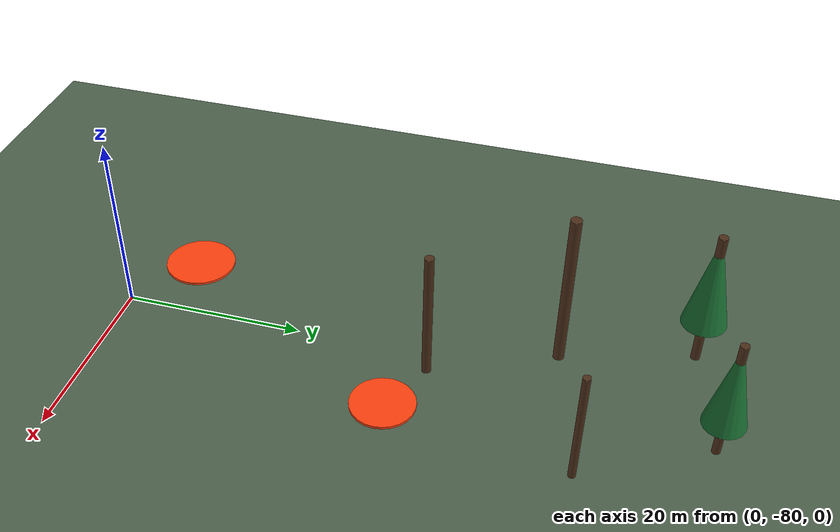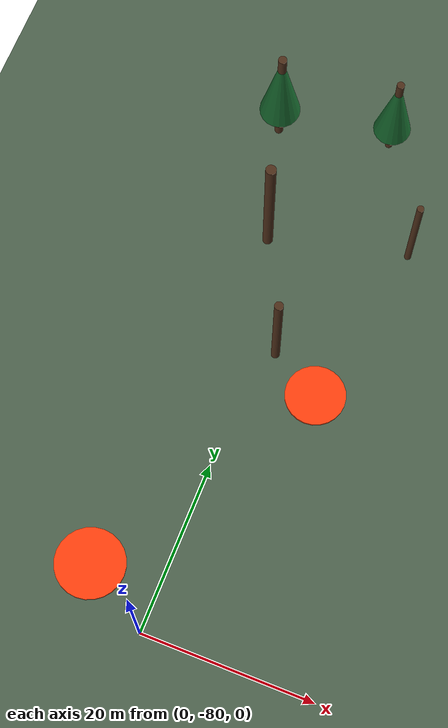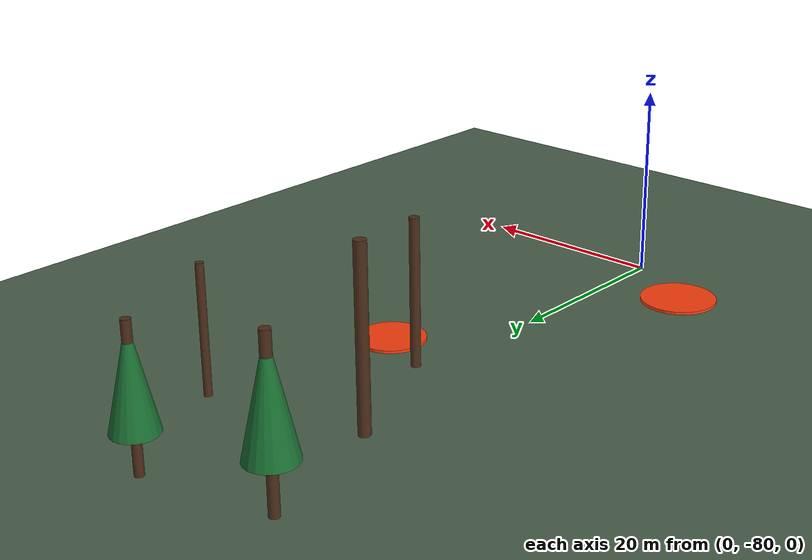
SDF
<?xml version="1.0" encoding="UTF-8"?>
<sdf version="1.9">
  <world name="wildfire_obstacle_world">

    <!-- Physics parameters calibrated for PX4 in modern Gazebo (gz) -->
    <physics type="ode">
      <max_step_size>0.004</max_step_size>
      <real_time_factor>1.0</real_time_factor>
      <real_time_update_rate>250</real_time_update_rate>
    </physics>

    <gravity>0 0 -9.8066</gravity>
    <magnetic_field>6.0e-06 2.3e-05 -4.2e-05</magnetic_field>
    <atmosphere type="adiabatic"/>

    <!-- Required Gazebo Sim (gz) system plugins -->
    <plugin filename="gz-sim-physics-system" name="gz::sim::systems::Physics"/>
    <plugin filename="gz-sim-user-commands-system" name="gz::sim::systems::UserCommands"/>
    <plugin filename="gz-sim-scene-broadcaster-system" name="gz::sim::systems::SceneBroadcaster"/>
    <plugin filename="gz-sim-sensors-system" name="gz::sim::systems::Sensors">
      <render_engine>ogre2</render_engine>
    </plugin>

    <!-- Self-contained Directional Sunlight -->
    <light type="directional" name="sun">
      <cast_shadows>true</cast_shadows>
      <pose>0 0 50 0 0 0</pose>
      <diffuse>0.9 0.9 0.9 1</diffuse>
      <specular>0.3 0.3 0.3 1</specular>
      <attenuation>
        <range>1000</range>
        <constant>0.9</constant>
        <linear>0.01</linear>
        <quadratic>0.001</quadratic>
      </attenuation>
      <direction>-0.5 0.1 -0.9</direction>
    </light>

    <!-- Self-contained Ground Plane -->
    <model name="ground_plane">
      <static>true</static>
      <link name="link">
        <collision name="collision">
          <geometry>
            <plane>
              <normal>0 0 1</normal>
              <size>600 600</size>
            </plane>
          </geometry>
          <surface>
            <friction>
              <ode>
                <mu>1.0</mu>
                <mu2>1.0</mu2>
              </ode>
            </friction>
          </surface>
        </collision>
        <visual name="visual">
          <geometry>
            <plane>
              <normal>0 0 1</normal>
              <size>600 600</size>
            </plane>
          </geometry>
          <material>
            <ambient>0.25 0.3 0.25 1</ambient>
            <diffuse>0.3 0.38 0.3 1</diffuse>
            <specular>0.1 0.1 0.1 1</specular>
          </material>
        </visual>
      </link>
    </model>

    <!-- ==================== PINE TREE OBSTACLES ==================== -->
    <!-- Tree Obstacle 1 (North=15, East=5) -->
    <model name="pine_tree_1">
      <static>true</static>
      <pose>5 -15 0 0 0 0</pose>
      <link name="trunk">
        <collision name="collision">
          <geometry><cylinder><radius>0.45</radius><length>14.0</length></cylinder></geometry>
          <pose>0 0 7.0 0 0 0</pose>
        </collision>
        <visual name="visual">
          <geometry><cylinder><radius>0.45</radius><length>14.0</length></cylinder></geometry>
          <pose>0 0 7.0 0 0 0</pose>
          <material><ambient>0.25 0.15 0.1 1</ambient><diffuse>0.3 0.18 0.1 1</diffuse></material>
        </visual>
      </link>
      <link name="foliage">
        <collision name="collision">
          <geometry><cone><radius>2.2</radius><length>10.0</length></cone></geometry>
          <pose>0 0 9.0 0 0 0</pose>
        </collision>
        <visual name="visual">
          <geometry><cone><radius>2.2</radius><length>10.0</length></cone></geometry>
          <pose>0 0 9.0 0 0 0</pose>
          <material><ambient>0.08 0.35 0.15 1</ambient><diffuse>0.1 0.45 0.2 1</diffuse></material>
        </visual>
      </link>
    </model>

    <!-- Tree Obstacle 2 (North=18, East=-8) -->
    <model name="pine_tree_2">
      <static>true</static>
      <pose>-8 -18 0 0 0 0</pose>
      <link name="trunk">
        <collision name="collision">
          <geometry><cylinder><radius>0.5</radius><length>16.0</length></cylinder></geometry>
          <pose>0 0 8.0 0 0 0</pose>
        </collision>
        <visual name="visual">
          <geometry><cylinder><radius>0.5</radius><length>16.0</length></cylinder></geometry>
          <pose>0 0 8.0 0 0 0</pose>
          <material><ambient>0.25 0.15 0.1 1</ambient><diffuse>0.3 0.18 0.1 1</diffuse></material>
        </visual>
      </link>
      <link name="foliage">
        <collision name="collision">
          <geometry><cone><radius>2.4</radius><length>11.0</length></cone></geometry>
          <pose>0 0 10.5 0 0 0</pose>
        </collision>
        <visual name="visual">
          <geometry><cone><radius>2.4</radius><length>11.0</length></cone></geometry>
          <pose>0 0 10.5 0 0 0</pose>
          <material><ambient>0.08 0.35 0.15 1</ambient><diffuse>0.1 0.45 0.2 1</diffuse></material>
        </visual>
      </link>
    </model>

    <!-- Tree Obstacle 3 (North=28, East=12) -->
    <model name="pine_tree_3">
      <static>true</static>
      <pose>12 -28 0 0 0 0</pose>
      <link name="trunk">
        <collision name="collision">
          <geometry><cylinder><radius>0.4</radius><length>13.0</length></cylinder></geometry>
          <pose>0 0 6.5 0 0 0</pose>
        </collision>
        <visual name="visual">
          <geometry><cylinder><radius>0.4</radius><length>13.0</length></cylinder></geometry>
          <pose>0 0 6.5 0 0 0</pose>
          <material><ambient>0.25 0.15 0.1 1</ambient><diffuse>0.3 0.18 0.1 1</diffuse></material>
        </visual>
      </link>
    </model>

    <!-- Tree Obstacle 4 (North=32, East=-4) -->
    <model name="pine_tree_4">
      <static>true</static>
      <pose>-4 -32 0 0 0 0</pose>
      <link name="trunk">
        <collision name="collision">
          <geometry><cylinder><radius>0.6</radius><length>18.0</length></cylinder></geometry>
          <pose>0 0 9.0 0 0 0</pose>
        </collision>
        <visual name="visual">
          <geometry><cylinder><radius>0.6</radius><length>18.0</length></cylinder></geometry>
          <pose>0 0 9.0 0 0 0</pose>
          <material><ambient>0.25 0.15 0.1 1</ambient><diffuse>0.3 0.18 0.1 1</diffuse></material>
        </visual>
      </link>
    </model>

    <!-- Tree Obstacle 5 (North=45, East=2) -->
    <model name="pine_tree_5">
      <static>true</static>
      <pose>2 -45 0 0 0 0</pose>
      <link name="trunk">
        <collision name="collision">
          <geometry><cylinder><radius>0.5</radius><length>15.0</length></cylinder></geometry>
          <pose>0 0 7.5 0 0 0</pose>
        </collision>
        <visual name="visual">
          <geometry><cylinder><radius>0.5</radius><length>15.0</length></cylinder></geometry>
          <pose>0 0 7.5 0 0 0</pose>
          <material><ambient>0.25 0.15 0.1 1</ambient><diffuse>0.3 0.18 0.1 1</diffuse></material>
        </visual>
      </link>
    </model>

    <!-- Wildfire Target Beacon Alpha (Coordinate: North=48, East=8) -->
    <model name="wildfire_target_alpha">
      <static>true</static>
      <pose>8 -48 0.1 0 0 0</pose>
      <link name="link">
        <collision name="collision">
          <geometry><cylinder><radius>3.5</radius><length>0.3</length></cylinder></geometry>
        </collision>
        <visual name="visual">
          <geometry><cylinder><radius>3.5</radius><length>0.3</length></cylinder></geometry>
          <material>
            <ambient>0.9 0.2 0.05 1</ambient>
            <diffuse>1.0 0.25 0.05 1</diffuse>
            <emissive>0.8 0.2 0.05 1</emissive>
          </material>
        </visual>
      </link>
    </model>

    <!-- Wildfire Target Beacon Bravo (Coordinate: North=75, East=-8) -->
    <model name="wildfire_target_bravo">
      <static>true</static>
      <pose>-8 -75 0.1 0 0 0</pose>
      <link name="link">
        <collision name="collision">
          <geometry><cylinder><radius>4.0</radius><length>0.3</length></cylinder></geometry>
        </collision>
        <visual name="visual">
          <geometry><cylinder><radius>4.0</radius><length>0.3</length></cylinder></geometry>
          <material>
            <ambient>0.9 0.2 0.05 1</ambient>
            <diffuse>1.0 0.25 0.05 1</diffuse>
            <emissive>0.8 0.2 0.05 1</emissive>
          </material>
        </visual>
      </link>
    </model>

  </world>
</sdf>
